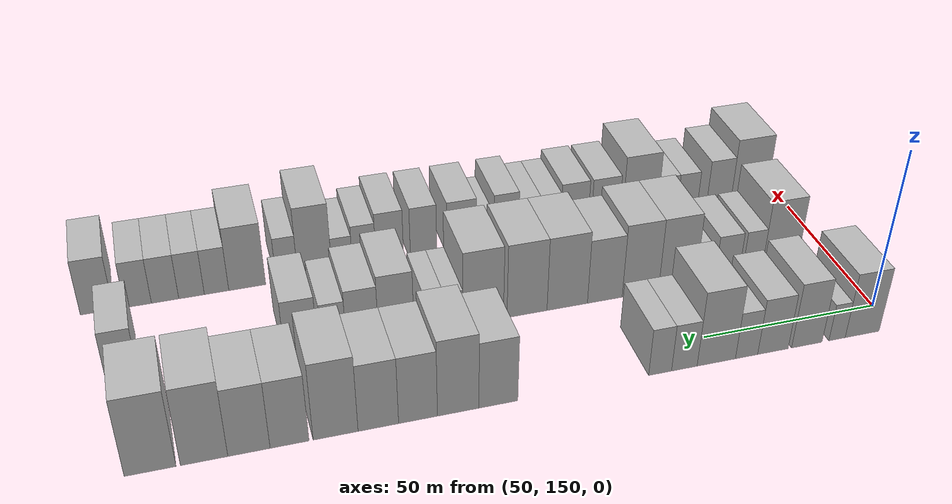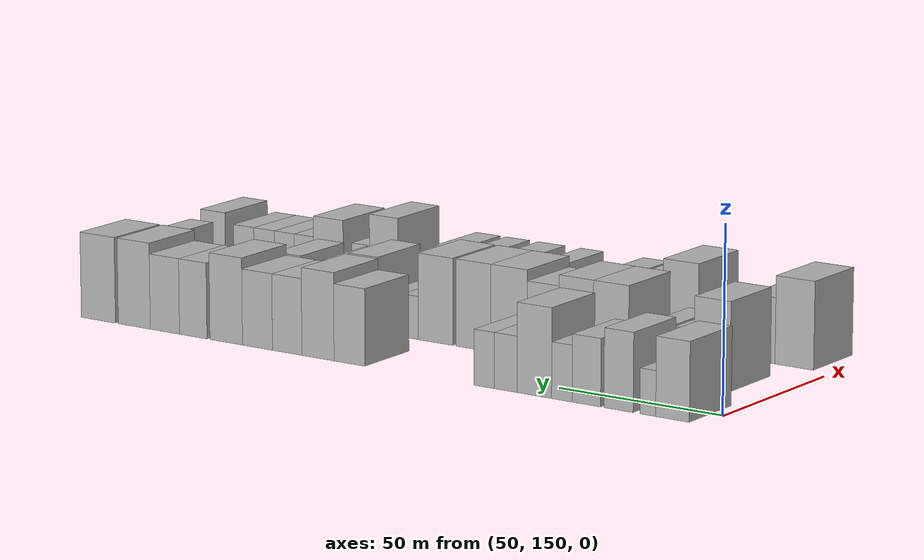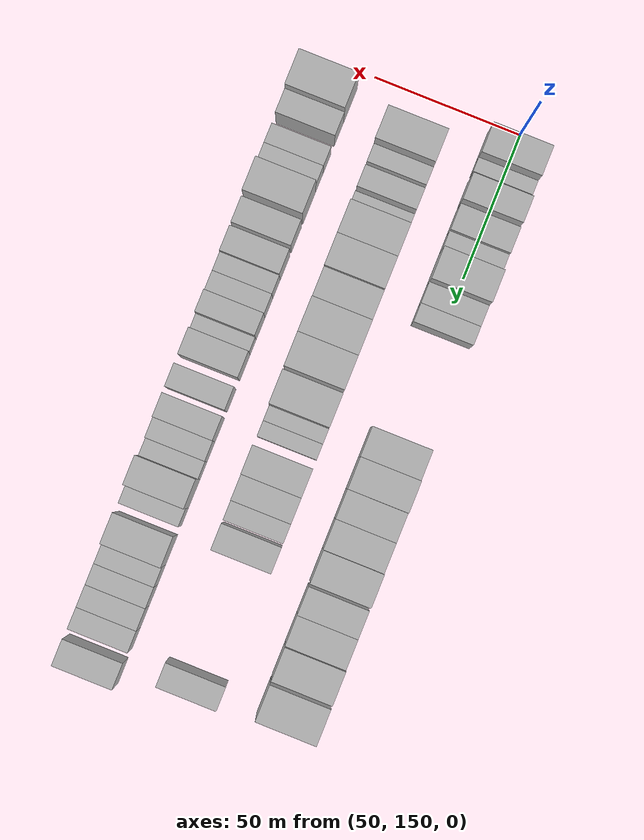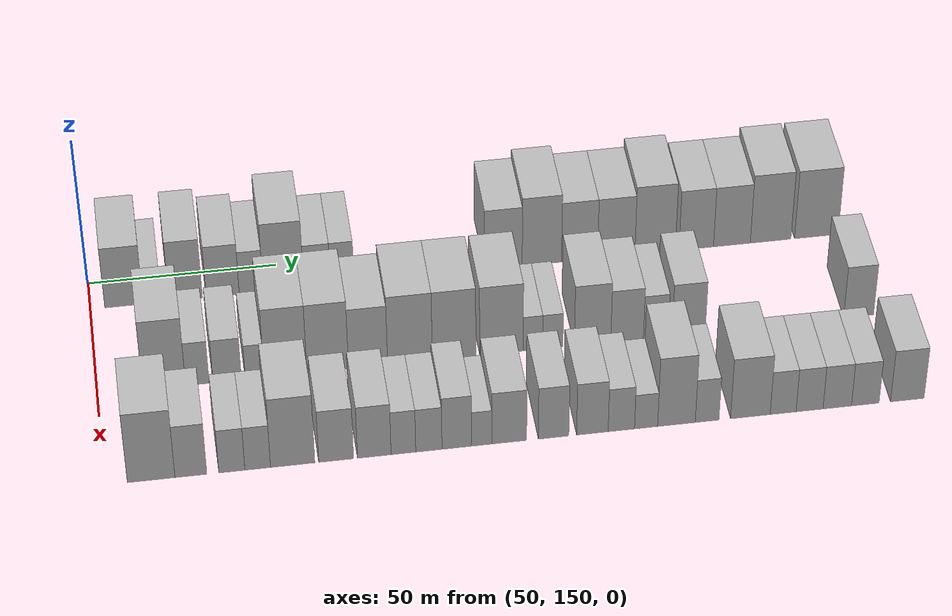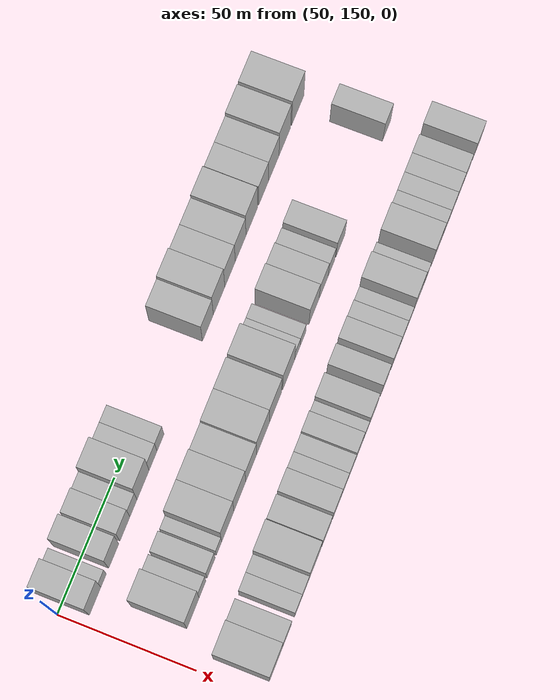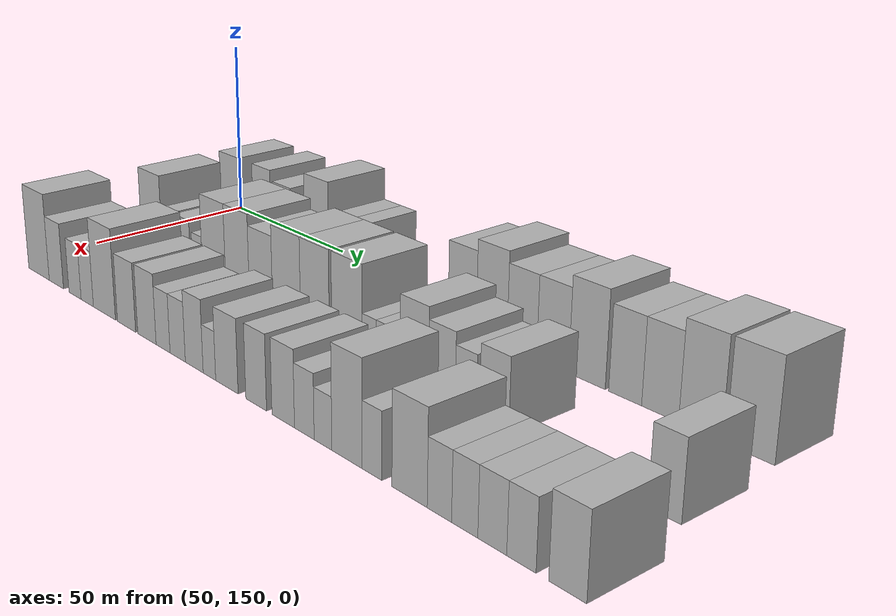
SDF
<sdf version="1.6">
 <world name="default">
  <model name="building_59">
   <static>1</static>
   <pose>50.0000 158.9098 0 0.000000 0.000000 0.000000</pose>
   <link name="link">
    <pose>0 0 10.50 0 0 0</pose>
    <collision name="collision"><geometry><box><size>20.0000 10.0654 21.0000</size></box></geometry></collision>
    <visual name="visual">
     <cast_shadows>0</cast_shadows>
     <geometry><box><size>20.0000 10.0654 21.0000</size></box></geometry>
     <material>
      <script>
       <uri>model://HANNAS_wall/materials/scripts</uri>
       <uri>model://HANNAS_wall/materials/textures</uri>
       <name>vrc/HANNAS_wall</name>
      </script>
     </material>
    </visual>
   </link>
  </model>
  <model name="building_60">
   <static>1</static>
   <pose>50.0000 166.3435 0 0.000000 0.000000 0.000000</pose>
   <link name="link">
    <pose>0 0 6.00 0 0 0</pose>
    <collision name="collision"><geometry><box><size>20.0000 4.8020 12.0000</size></box></geometry></collision>
    <visual name="visual">
     <cast_shadows>0</cast_shadows>
     <geometry><box><size>20.0000 4.8020 12.0000</size></box></geometry>
     <material>
      <script>
       <uri>model://HANNAS_wall/materials/scripts</uri>
       <uri>model://HANNAS_wall/materials/textures</uri>
       <name>vrc/HANNAS_wall</name>
      </script>
     </material>
    </visual>
   </link>
  </model>
  <model name="building_61">
   <static>1</static>
   <pose>50.0000 175.1790 0 0.000000 0.000000 0.000000</pose>
   <link name="link">
    <pose>0 0 10.50 0 0 0</pose>
    <collision name="collision"><geometry><box><size>20.0000 8.8691 21.0000</size></box></geometry></collision>
    <visual name="visual">
     <cast_shadows>0</cast_shadows>
     <geometry><box><size>20.0000 8.8691 21.0000</size></box></geometry>
     <material>
      <script>
       <uri>model://HANNAS_wall/materials/scripts</uri>
       <uri>model://HANNAS_wall/materials/textures</uri>
       <name>vrc/HANNAS_wall</name>
      </script>
     </material>
    </visual>
   </link>
  </model>
  <model name="building_62">
   <static>1</static>
   <pose>50.0000 184.9909 0 0.000000 0.000000 0.000000</pose>
   <link name="link">
    <pose>0 0 9.00 0 0 0</pose>
    <collision name="collision"><geometry><box><size>20.0000 8.7547 18.0000</size></box></geometry></collision>
    <visual name="visual">
     <cast_shadows>0</cast_shadows>
     <geometry><box><size>20.0000 8.7547 18.0000</size></box></geometry>
     <material>
      <script>
       <uri>model://HANNAS_wall/materials/scripts</uri>
       <uri>model://HANNAS_wall/materials/textures</uri>
       <name>vrc/HANNAS_wall</name>
      </script>
     </material>
    </visual>
   </link>
  </model>
  <model name="building_63">
   <static>1</static>
   <pose>50.0000 192.5342 0 0.000000 0.000000 0.000000</pose>
   <link name="link">
    <pose>0 0 7.50 0 0 0</pose>
    <collision name="collision"><geometry><box><size>20.0000 6.3318 15.0000</size></box></geometry></collision>
    <visual name="visual">
     <cast_shadows>0</cast_shadows>
     <geometry><box><size>20.0000 6.3318 15.0000</size></box></geometry>
     <material>
      <script>
       <uri>model://HANNAS_wall/materials/scripts</uri>
       <uri>model://HANNAS_wall/materials/textures</uri>
       <name>vrc/HANNAS_wall</name>
      </script>
     </material>
    </visual>
   </link>
  </model>
  <model name="building_64">
   <static>1</static>
   <pose>50.0000 201.0897 0 0.000000 0.000000 0.000000</pose>
   <link name="link">
    <pose>0 0 12.00 0 0 0</pose>
    <collision name="collision"><geometry><box><size>20.0000 10.7792 24.0000</size></box></geometry></collision>
    <visual name="visual">
     <cast_shadows>0</cast_shadows>
     <geometry><box><size>20.0000 10.7792 24.0000</size></box></geometry>
     <material>
      <script>
       <uri>model://HANNAS_wall/materials/scripts</uri>
       <uri>model://HANNAS_wall/materials/textures</uri>
       <name>vrc/HANNAS_wall</name>
      </script>
     </material>
    </visual>
   </link>
  </model>
  <model name="building_65">
   <static>1</static>
   <pose>50.0000 210.0357 0 0.000000 0.000000 0.000000</pose>
   <link name="link">
    <pose>0 0 7.50 0 0 0</pose>
    <collision name="collision"><geometry><box><size>20.0000 7.1128 15.0000</size></box></geometry></collision>
    <visual name="visual">
     <cast_shadows>0</cast_shadows>
     <geometry><box><size>20.0000 7.1128 15.0000</size></box></geometry>
     <material>
      <script>
       <uri>model://HANNAS_wall/materials/scripts</uri>
       <uri>model://HANNAS_wall/materials/textures</uri>
       <name>vrc/HANNAS_wall</name>
      </script>
     </material>
    </visual>
   </link>
  </model>
  <model name="building_66">
   <static>1</static>
   <pose>50.0000 216.7397 0 0.000000 0.000000 0.000000</pose>
   <link name="link">
    <pose>0 0 7.50 0 0 0</pose>
    <collision name="collision"><geometry><box><size>20.0000 6.2953 15.0000</size></box></geometry></collision>
    <visual name="visual">
     <cast_shadows>0</cast_shadows>
     <geometry><box><size>20.0000 6.2953 15.0000</size></box></geometry>
     <material>
      <script>
       <uri>model://HANNAS_wall/materials/scripts</uri>
       <uri>model://HANNAS_wall/materials/textures</uri>
       <name>vrc/HANNAS_wall</name>
      </script>
     </material>
    </visual>
   </link>
  </model>
  <model name="building_67">
   <static>1</static>
   <pose>50.0000 260.0310 0 0.000000 0.000000 0.000000</pose>
   <link name="link">
    <pose>0 0 10.50 0 0 0</pose>
    <collision name="collision"><geometry><box><size>20.0000 10.0957 21.0000</size></box></geometry></collision>
    <visual name="visual">
     <cast_shadows>0</cast_shadows>
     <geometry><box><size>20.0000 10.0957 21.0000</size></box></geometry>
     <material>
      <script>
       <uri>model://HANNAS_wall/materials/scripts</uri>
       <uri>model://HANNAS_wall/materials/textures</uri>
       <name>vrc/HANNAS_wall</name>
      </script>
     </material>
    </visual>
   </link>
  </model>
  <model name="building_68">
   <static>1</static>
   <pose>50.0000 270.3916 0 0.000000 0.000000 0.000000</pose>
   <link name="link">
    <pose>0 0 12.00 0 0 0</pose>
    <collision name="collision"><geometry><box><size>20.0000 10.6254 24.0000</size></box></geometry></collision>
    <visual name="visual">
     <cast_shadows>0</cast_shadows>
     <geometry><box><size>20.0000 10.6254 24.0000</size></box></geometry>
     <material>
      <script>
       <uri>model://HANNAS_wall/materials/scripts</uri>
       <uri>model://HANNAS_wall/materials/textures</uri>
       <name>vrc/HANNAS_wall</name>
      </script>
     </material>
    </visual>
   </link>
  </model>
  <model name="building_69">
   <static>1</static>
   <pose>50.0000 280.6120 0 0.000000 0.000000 0.000000</pose>
   <link name="link">
    <pose>0 0 10.50 0 0 0</pose>
    <collision name="collision"><geometry><box><size>20.0000 9.8154 21.0000</size></box></geometry></collision>
    <visual name="visual">
     <cast_shadows>0</cast_shadows>
     <geometry><box><size>20.0000 9.8154 21.0000</size></box></geometry>
     <material>
      <script>
       <uri>model://HANNAS_wall/materials/scripts</uri>
       <uri>model://HANNAS_wall/materials/textures</uri>
       <name>vrc/HANNAS_wall</name>
      </script>
     </material>
    </visual>
   </link>
  </model>
  <model name="building_70">
   <static>1</static>
   <pose>50.0000 290.5713 0 0.000000 0.000000 0.000000</pose>
   <link name="link">
    <pose>0 0 10.50 0 0 0</pose>
    <collision name="collision"><geometry><box><size>20.0000 10.1032 21.0000</size></box></geometry></collision>
    <visual name="visual">
     <cast_shadows>0</cast_shadows>
     <geometry><box><size>20.0000 10.1032 21.0000</size></box></geometry>
     <material>
      <script>
       <uri>model://HANNAS_wall/materials/scripts</uri>
       <uri>model://HANNAS_wall/materials/textures</uri>
       <name>vrc/HANNAS_wall</name>
      </script>
     </material>
    </visual>
   </link>
  </model>
  <model name="building_71">
   <static>1</static>
   <pose>50.0000 301.1397 0 0.000000 0.000000 0.000000</pose>
   <link name="link">
    <pose>0 0 12.00 0 0 0</pose>
    <collision name="collision"><geometry><box><size>20.0000 11.0336 24.0000</size></box></geometry></collision>
    <visual name="visual">
     <cast_shadows>0</cast_shadows>
     <geometry><box><size>20.0000 11.0336 24.0000</size></box></geometry>
     <material>
      <script>
       <uri>model://HANNAS_wall/materials/scripts</uri>
       <uri>model://HANNAS_wall/materials/textures</uri>
       <name>vrc/HANNAS_wall</name>
      </script>
     </material>
    </visual>
   </link>
  </model>
  <model name="building_72">
   <static>1</static>
   <pose>50.0000 312.3624 0 0.000000 0.000000 0.000000</pose>
   <link name="link">
    <pose>0 0 10.50 0 0 0</pose>
    <collision name="collision"><geometry><box><size>20.0000 9.4117 21.0000</size></box></geometry></collision>
    <visual name="visual">
     <cast_shadows>0</cast_shadows>
     <geometry><box><size>20.0000 9.4117 21.0000</size></box></geometry>
     <material>
      <script>
       <uri>model://HANNAS_wall/materials/scripts</uri>
       <uri>model://HANNAS_wall/materials/textures</uri>
       <name>vrc/HANNAS_wall</name>
      </script>
     </material>
    </visual>
   </link>
  </model>
  <model name="building_73">
   <static>1</static>
   <pose>50.0000 322.1083 0 0.000000 0.000000 0.000000</pose>
   <link name="link">
    <pose>0 0 10.50 0 0 0</pose>
    <collision name="collision"><geometry><box><size>20.0000 10.0800 21.0000</size></box></geometry></collision>
    <visual name="visual">
     <cast_shadows>0</cast_shadows>
     <geometry><box><size>20.0000 10.0800 21.0000</size></box></geometry>
     <material>
      <script>
       <uri>model://HANNAS_wall/materials/scripts</uri>
       <uri>model://HANNAS_wall/materials/textures</uri>
       <name>vrc/HANNAS_wall</name>
      </script>
     </material>
    </visual>
   </link>
  </model>
  <model name="building_74">
   <static>1</static>
   <pose>50.0000 332.7266 0 0.000000 0.000000 0.000000</pose>
   <link name="link">
    <pose>0 0 12.00 0 0 0</pose>
    <collision name="collision"><geometry><box><size>20.0000 11.1566 24.0000</size></box></geometry></collision>
    <visual name="visual">
     <cast_shadows>0</cast_shadows>
     <geometry><box><size>20.0000 11.1566 24.0000</size></box></geometry>
     <material>
      <script>
       <uri>model://HANNAS_wall/materials/scripts</uri>
       <uri>model://HANNAS_wall/materials/textures</uri>
       <name>vrc/HANNAS_wall</name>
      </script>
     </material>
    </visual>
   </link>
  </model>
  <model name="building_75">
   <static>1</static>
   <pose>50.0000 345.2990 0 0.000000 0.000000 0.000000</pose>
   <link name="link">
    <pose>0 0 12.00 0 0 0</pose>
    <collision name="collision"><geometry><box><size>20.0000 11.9881 24.0000</size></box></geometry></collision>
    <visual name="visual">
     <cast_shadows>0</cast_shadows>
     <geometry><box><size>20.0000 11.9881 24.0000</size></box></geometry>
     <material>
      <script>
       <uri>model://HANNAS_wall/materials/scripts</uri>
       <uri>model://HANNAS_wall/materials/textures</uri>
       <name>vrc/HANNAS_wall</name>
      </script>
     </material>
    </visual>
   </link>
  </model>
  <model name="building_137">
   <static>1</static>
   <pose>82.0000 167.1859 0 0.000000 0.000000 0.000000</pose>
   <link name="link">
    <pose>0 0 12.00 0 0 0</pose>
    <collision name="collision"><geometry><box><size>20.0000 10.9982 24.0000</size></box></geometry></collision>
    <visual name="visual">
     <cast_shadows>0</cast_shadows>
     <geometry><box><size>20.0000 10.9982 24.0000</size></box></geometry>
     <material>
      <script>
       <uri>model://HANNAS_wall/materials/scripts</uri>
       <uri>model://HANNAS_wall/materials/textures</uri>
       <name>vrc/HANNAS_wall</name>
      </script>
     </material>
    </visual>
   </link>
  </model>
  <model name="building_138">
   <static>1</static>
   <pose>82.0000 175.7157 0 0.000000 0.000000 0.000000</pose>
   <link name="link">
    <pose>0 0 7.50 0 0 0</pose>
    <collision name="collision"><geometry><box><size>20.0000 6.0614 15.0000</size></box></geometry></collision>
    <visual name="visual">
     <cast_shadows>0</cast_shadows>
     <geometry><box><size>20.0000 6.0614 15.0000</size></box></geometry>
     <material>
      <script>
       <uri>model://HANNAS_wall/materials/scripts</uri>
       <uri>model://HANNAS_wall/materials/textures</uri>
       <name>vrc/HANNAS_wall</name>
      </script>
     </material>
    </visual>
   </link>
  </model>
  <model name="building_139">
   <static>1</static>
   <pose>82.0000 183.4173 0 0.000000 0.000000 0.000000</pose>
   <link name="link">
    <pose>0 0 7.50 0 0 0</pose>
    <collision name="collision"><geometry><box><size>20.0000 7.3418 15.0000</size></box></geometry></collision>
    <visual name="visual">
     <cast_shadows>0</cast_shadows>
     <geometry><box><size>20.0000 7.3418 15.0000</size></box></geometry>
     <material>
      <script>
       <uri>model://HANNAS_wall/materials/scripts</uri>
       <uri>model://HANNAS_wall/materials/textures</uri>
       <name>vrc/HANNAS_wall</name>
      </script>
     </material>
    </visual>
   </link>
  </model>
  <model name="building_140">
   <static>1</static>
   <pose>82.0000 190.5098 0 0.000000 0.000000 0.000000</pose>
   <link name="link">
    <pose>0 0 6.00 0 0 0</pose>
    <collision name="collision"><geometry><box><size>20.0000 4.8431 12.0000</size></box></geometry></collision>
    <visual name="visual">
     <cast_shadows>0</cast_shadows>
     <geometry><box><size>20.0000 4.8431 12.0000</size></box></geometry>
     <material>
      <script>
       <uri>model://HANNAS_wall/materials/scripts</uri>
       <uri>model://HANNAS_wall/materials/textures</uri>
       <name>vrc/HANNAS_wall</name>
      </script>
     </material>
    </visual>
   </link>
  </model>
  <model name="building_141">
   <static>1</static>
   <pose>82.0000 198.4770 0 0.000000 0.000000 0.000000</pose>
   <link name="link">
    <pose>0 0 12.00 0 0 0</pose>
    <collision name="collision"><geometry><box><size>20.0000 11.0915 24.0000</size></box></geometry></collision>
    <visual name="visual">
     <cast_shadows>0</cast_shadows>
     <geometry><box><size>20.0000 11.0915 24.0000</size></box></geometry>
     <material>
      <script>
       <uri>model://HANNAS_wall/materials/scripts</uri>
       <uri>model://HANNAS_wall/materials/textures</uri>
       <name>vrc/HANNAS_wall</name>
      </script>
     </material>
    </visual>
   </link>
  </model>
  <model name="building_142">
   <static>1</static>
   <pose>82.0000 209.4177 0 0.000000 0.000000 0.000000</pose>
   <link name="link">
    <pose>0 0 12.00 0 0 0</pose>
    <collision name="collision"><geometry><box><size>20.0000 10.7898 24.0000</size></box></geometry></collision>
    <visual name="visual">
     <cast_shadows>0</cast_shadows>
     <geometry><box><size>20.0000 10.7898 24.0000</size></box></geometry>
     <material>
      <script>
       <uri>model://HANNAS_wall/materials/scripts</uri>
       <uri>model://HANNAS_wall/materials/textures</uri>
       <name>vrc/HANNAS_wall</name>
      </script>
     </material>
    </visual>
   </link>
  </model>
  <model name="building_143">
   <static>1</static>
   <pose>82.0000 219.8972 0 0.000000 0.000000 0.000000</pose>
   <link name="link">
    <pose>0 0 10.50 0 0 0</pose>
    <collision name="collision"><geometry><box><size>20.0000 10.1693 21.0000</size></box></geometry></collision>
    <visual name="visual">
     <cast_shadows>0</cast_shadows>
     <geometry><box><size>20.0000 10.1693 21.0000</size></box></geometry>
     <material>
      <script>
       <uri>model://HANNAS_wall/materials/scripts</uri>
       <uri>model://HANNAS_wall/materials/textures</uri>
       <name>vrc/HANNAS_wall</name>
      </script>
     </material>
    </visual>
   </link>
  </model>
  <model name="building_144">
   <static>1</static>
   <pose>82.0000 230.8302 0 0.000000 0.000000 0.000000</pose>
   <link name="link">
    <pose>0 0 12.00 0 0 0</pose>
    <collision name="collision"><geometry><box><size>20.0000 11.6968 24.0000</size></box></geometry></collision>
    <visual name="visual">
     <cast_shadows>0</cast_shadows>
     <geometry><box><size>20.0000 11.6968 24.0000</size></box></geometry>
     <material>
      <script>
       <uri>model://HANNAS_wall/materials/scripts</uri>
       <uri>model://HANNAS_wall/materials/textures</uri>
       <name>vrc/HANNAS_wall</name>
      </script>
     </material>
    </visual>
   </link>
  </model>
  <model name="building_145">
   <static>1</static>
   <pose>82.0000 242.3805 0 0.000000 0.000000 0.000000</pose>
   <link name="link">
    <pose>0 0 12.00 0 0 0</pose>
    <collision name="collision"><geometry><box><size>20.0000 11.4036 24.0000</size></box></geometry></collision>
    <visual name="visual">
     <cast_shadows>0</cast_shadows>
     <geometry><box><size>20.0000 11.4036 24.0000</size></box></geometry>
     <material>
      <script>
       <uri>model://HANNAS_wall/materials/scripts</uri>
       <uri>model://HANNAS_wall/materials/textures</uri>
       <name>vrc/HANNAS_wall</name>
      </script>
     </material>
    </visual>
   </link>
  </model>
  <model name="building_146">
   <static>1</static>
   <pose>82.0000 254.7773 0 0.000000 0.000000 0.000000</pose>
   <link name="link">
    <pose>0 0 12.00 0 0 0</pose>
    <collision name="collision"><geometry><box><size>20.0000 11.3901 24.0000</size></box></geometry></collision>
    <visual name="visual">
     <cast_shadows>0</cast_shadows>
     <geometry><box><size>20.0000 11.3901 24.0000</size></box></geometry>
     <material>
      <script>
       <uri>model://HANNAS_wall/materials/scripts</uri>
       <uri>model://HANNAS_wall/materials/textures</uri>
       <name>vrc/HANNAS_wall</name>
      </script>
     </material>
    </visual>
   </link>
  </model>
  <model name="building_147">
   <static>1</static>
   <pose>82.0000 263.0407 0 0.000000 0.000000 0.000000</pose>
   <link name="link">
    <pose>0 0 6.00 0 0 0</pose>
    <collision name="collision"><geometry><box><size>20.0000 5.1366 12.0000</size></box></geometry></collision>
    <visual name="visual">
     <cast_shadows>0</cast_shadows>
     <geometry><box><size>20.0000 5.1366 12.0000</size></box></geometry>
     <material>
      <script>
       <uri>model://HANNAS_wall/materials/scripts</uri>
       <uri>model://HANNAS_wall/materials/textures</uri>
       <name>vrc/HANNAS_wall</name>
      </script>
     </material>
    </visual>
   </link>
  </model>
  <model name="building_148">
   <static>1</static>
   <pose>82.0000 268.2765 0 0.000000 0.000000 0.000000</pose>
   <link name="link">
    <pose>0 0 6.00 0 0 0</pose>
    <collision name="collision"><geometry><box><size>20.0000 5.3351 12.0000</size></box></geometry></collision>
    <visual name="visual">
     <cast_shadows>0</cast_shadows>
     <geometry><box><size>20.0000 5.3351 12.0000</size></box></geometry>
     <material>
      <script>
       <uri>model://HANNAS_wall/materials/scripts</uri>
       <uri>model://HANNAS_wall/materials/textures</uri>
       <name>vrc/HANNAS_wall</name>
      </script>
     </material>
    </visual>
   </link>
  </model>
  <model name="building_149">
   <static>1</static>
   <pose>82.0000 278.7651 0 0.000000 0.000000 0.000000</pose>
   <link name="link">
    <pose>0 0 10.50 0 0 0</pose>
    <collision name="collision"><geometry><box><size>20.0000 9.6419 21.0000</size></box></geometry></collision>
    <visual name="visual">
     <cast_shadows>0</cast_shadows>
     <geometry><box><size>20.0000 9.6419 21.0000</size></box></geometry>
     <material>
      <script>
       <uri>model://HANNAS_wall/materials/scripts</uri>
       <uri>model://HANNAS_wall/materials/textures</uri>
       <name>vrc/HANNAS_wall</name>
      </script>
     </material>
    </visual>
   </link>
  </model>
  <model name="building_150">
   <static>1</static>
   <pose>82.0000 287.9101 0 0.000000 0.000000 0.000000</pose>
   <link name="link">
    <pose>0 0 9.00 0 0 0</pose>
    <collision name="collision"><geometry><box><size>20.0000 8.6483 18.0000</size></box></geometry></collision>
    <visual name="visual">
     <cast_shadows>0</cast_shadows>
     <geometry><box><size>20.0000 8.6483 18.0000</size></box></geometry>
     <material>
      <script>
       <uri>model://HANNAS_wall/materials/scripts</uri>
       <uri>model://HANNAS_wall/materials/textures</uri>
       <name>vrc/HANNAS_wall</name>
      </script>
     </material>
    </visual>
   </link>
  </model>
  <model name="building_151">
   <static>1</static>
   <pose>82.0000 295.5325 0 0.000000 0.000000 0.000000</pose>
   <link name="link">
    <pose>0 0 7.50 0 0 0</pose>
    <collision name="collision"><geometry><box><size>20.0000 6.5965 15.0000</size></box></geometry></collision>
    <visual name="visual">
     <cast_shadows>0</cast_shadows>
     <geometry><box><size>20.0000 6.5965 15.0000</size></box></geometry>
     <material>
      <script>
       <uri>model://HANNAS_wall/materials/scripts</uri>
       <uri>model://HANNAS_wall/materials/textures</uri>
       <name>vrc/HANNAS_wall</name>
      </script>
     </material>
    </visual>
   </link>
  </model>
  <model name="building_152">
   <static>1</static>
   <pose>82.0000 304.2276 0 0.000000 0.000000 0.000000</pose>
   <link name="link">
    <pose>0 0 9.00 0 0 0</pose>
    <collision name="collision"><geometry><box><size>20.0000 8.7937 18.0000</size></box></geometry></collision>
    <visual name="visual">
     <cast_shadows>0</cast_shadows>
     <geometry><box><size>20.0000 8.7937 18.0000</size></box></geometry>
     <material>
      <script>
       <uri>model://HANNAS_wall/materials/scripts</uri>
       <uri>model://HANNAS_wall/materials/textures</uri>
       <name>vrc/HANNAS_wall</name>
      </script>
     </material>
    </visual>
   </link>
  </model>
  <model name="building_153">
   <static>1</static>
   <pose>82.0000 349.6391 0 0.000000 0.000000 0.000000</pose>
   <link name="link">
    <pose>0 0 9.00 0 0 0</pose>
    <collision name="collision"><geometry><box><size>20.0000 8.0098 18.0000</size></box></geometry></collision>
    <visual name="visual">
     <cast_shadows>0</cast_shadows>
     <geometry><box><size>20.0000 8.0098 18.0000</size></box></geometry>
     <material>
      <script>
       <uri>model://HANNAS_wall/materials/scripts</uri>
       <uri>model://HANNAS_wall/materials/textures</uri>
       <name>vrc/HANNAS_wall</name>
      </script>
     </material>
    </visual>
   </link>
  </model>
  <model name="building_208">
   <static>1</static>
   <pose>114.0000 161.6183 0 0.000000 0.000000 0.000000</pose>
   <link name="link">
    <pose>0 0 12.00 0 0 0</pose>
    <collision name="collision"><geometry><box><size>20.0000 11.8710 24.0000</size></box></geometry></collision>
    <visual name="visual">
     <cast_shadows>0</cast_shadows>
     <geometry><box><size>20.0000 11.8710 24.0000</size></box></geometry>
     <material>
      <script>
       <uri>model://HANNAS_wall/materials/scripts</uri>
       <uri>model://HANNAS_wall/materials/textures</uri>
       <name>vrc/HANNAS_wall</name>
      </script>
     </material>
    </visual>
   </link>
  </model>
  <model name="building_209">
   <static>1</static>
   <pose>114.0000 171.5466 0 0.000000 0.000000 0.000000</pose>
   <link name="link">
    <pose>0 0 9.00 0 0 0</pose>
    <collision name="collision"><geometry><box><size>20.0000 7.9855 18.0000</size></box></geometry></collision>
    <visual name="visual">
     <cast_shadows>0</cast_shadows>
     <geometry><box><size>20.0000 7.9855 18.0000</size></box></geometry>
     <material>
      <script>
       <uri>model://HANNAS_wall/materials/scripts</uri>
       <uri>model://HANNAS_wall/materials/textures</uri>
       <name>vrc/HANNAS_wall</name>
      </script>
     </material>
    </visual>
   </link>
  </model>
  <model name="building_210">
   <static>1</static>
   <pose>114.0000 181.8092 0 0.000000 0.000000 0.000000</pose>
   <link name="link">
    <pose>0 0 7.50 0 0 0</pose>
    <collision name="collision"><geometry><box><size>20.0000 6.5398 15.0000</size></box></geometry></collision>
    <visual name="visual">
     <cast_shadows>0</cast_shadows>
     <geometry><box><size>20.0000 6.5398 15.0000</size></box></geometry>
     <material>
      <script>
       <uri>model://HANNAS_wall/materials/scripts</uri>
       <uri>model://HANNAS_wall/materials/textures</uri>
       <name>vrc/HANNAS_wall</name>
      </script>
     </material>
    </visual>
   </link>
  </model>
  <model name="building_211">
   <static>1</static>
   <pose>114.0000 188.3021 0 0.000000 0.000000 0.000000</pose>
   <link name="link">
    <pose>0 0 7.50 0 0 0</pose>
    <collision name="collision"><geometry><box><size>20.0000 6.4460 15.0000</size></box></geometry></collision>
    <visual name="visual">
     <cast_shadows>0</cast_shadows>
     <geometry><box><size>20.0000 6.4460 15.0000</size></box></geometry>
     <material>
      <script>
       <uri>model://HANNAS_wall/materials/scripts</uri>
       <uri>model://HANNAS_wall/materials/textures</uri>
       <name>vrc/HANNAS_wall</name>
      </script>
     </material>
    </visual>
   </link>
  </model>
  <model name="building_212">
   <static>1</static>
   <pose>114.0000 197.1057 0 0.000000 0.000000 0.000000</pose>
   <link name="link">
    <pose>0 0 12.00 0 0 0</pose>
    <collision name="collision"><geometry><box><size>20.0000 11.1612 24.0000</size></box></geometry></collision>
    <visual name="visual">
     <cast_shadows>0</cast_shadows>
     <geometry><box><size>20.0000 11.1612 24.0000</size></box></geometry>
     <material>
      <script>
       <uri>model://HANNAS_wall/materials/scripts</uri>
       <uri>model://HANNAS_wall/materials/textures</uri>
       <name>vrc/HANNAS_wall</name>
      </script>
     </material>
    </visual>
   </link>
  </model>
  <model name="building_213">
   <static>1</static>
   <pose>114.0000 208.0787 0 0.000000 0.000000 0.000000</pose>
   <link name="link">
    <pose>0 0 9.00 0 0 0</pose>
    <collision name="collision"><geometry><box><size>20.0000 8.7847 18.0000</size></box></geometry></collision>
    <visual name="visual">
     <cast_shadows>0</cast_shadows>
     <geometry><box><size>20.0000 8.7847 18.0000</size></box></geometry>
     <material>
      <script>
       <uri>model://HANNAS_wall/materials/scripts</uri>
       <uri>model://HANNAS_wall/materials/textures</uri>
       <name>vrc/HANNAS_wall</name>
      </script>
     </material>
    </visual>
   </link>
  </model>
  <model name="building_214">
   <static>1</static>
   <pose>114.0000 217.7221 0 0.000000 0.000000 0.000000</pose>
   <link name="link">
    <pose>0 0 9.00 0 0 0</pose>
    <collision name="collision"><geometry><box><size>20.0000 8.5021 18.0000</size></box></geometry></collision>
    <visual name="visual">
     <cast_shadows>0</cast_shadows>
     <geometry><box><size>20.0000 8.5021 18.0000</size></box></geometry>
     <material>
      <script>
       <uri>model://HANNAS_wall/materials/scripts</uri>
       <uri>model://HANNAS_wall/materials/textures</uri>
       <name>vrc/HANNAS_wall</name>
      </script>
     </material>
    </visual>
   </link>
  </model>
  <model name="building_215">
   <static>1</static>
   <pose>114.0000 225.1070 0 0.000000 0.000000 0.000000</pose>
   <link name="link">
    <pose>0 0 7.50 0 0 0</pose>
    <collision name="collision"><geometry><box><size>20.0000 6.2676 15.0000</size></box></geometry></collision>
    <visual name="visual">
     <cast_shadows>0</cast_shadows>
     <geometry><box><size>20.0000 6.2676 15.0000</size></box></geometry>
     <material>
      <script>
       <uri>model://HANNAS_wall/materials/scripts</uri>
       <uri>model://HANNAS_wall/materials/textures</uri>
       <name>vrc/HANNAS_wall</name>
      </script>
     </material>
    </visual>
   </link>
  </model>
  <model name="building_216">
   <static>1</static>
   <pose>114.0000 231.5764 0 0.000000 0.000000 0.000000</pose>
   <link name="link">
    <pose>0 0 7.50 0 0 0</pose>
    <collision name="collision"><geometry><box><size>20.0000 6.6713 15.0000</size></box></geometry></collision>
    <visual name="visual">
     <cast_shadows>0</cast_shadows>
     <geometry><box><size>20.0000 6.6713 15.0000</size></box></geometry>
     <material>
      <script>
       <uri>model://HANNAS_wall/materials/scripts</uri>
       <uri>model://HANNAS_wall/materials/textures</uri>
       <name>vrc/HANNAS_wall</name>
      </script>
     </material>
    </visual>
   </link>
  </model>
  <model name="building_217">
   <static>1</static>
   <pose>114.0000 238.6825 0 0.000000 0.000000 0.000000</pose>
   <link name="link">
    <pose>0 0 9.00 0 0 0</pose>
    <collision name="collision"><geometry><box><size>20.0000 7.5409 18.0000</size></box></geometry></collision>
    <visual name="visual">
     <cast_shadows>0</cast_shadows>
     <geometry><box><size>20.0000 7.5409 18.0000</size></box></geometry>
     <material>
      <script>
       <uri>model://HANNAS_wall/materials/scripts</uri>
       <uri>model://HANNAS_wall/materials/textures</uri>
       <name>vrc/HANNAS_wall</name>
      </script>
     </material>
    </visual>
   </link>
  </model>
  <model name="building_218">
   <static>1</static>
   <pose>114.0000 245.0213 0 0.000000 0.000000 0.000000</pose>
   <link name="link">
    <pose>0 0 6.00 0 0 0</pose>
    <collision name="collision"><geometry><box><size>20.0000 5.1367 12.0000</size></box></geometry></collision>
    <visual name="visual">
     <cast_shadows>0</cast_shadows>
     <geometry><box><size>20.0000 5.1367 12.0000</size></box></geometry>
     <material>
      <script>
       <uri>model://HANNAS_wall/materials/scripts</uri>
       <uri>model://HANNAS_wall/materials/textures</uri>
       <name>vrc/HANNAS_wall</name>
      </script>
     </material>
    </visual>
   </link>
  </model>
  <model name="building_219">
   <static>1</static>
   <pose>114.0000 252.0419 0 0.000000 0.000000 0.000000</pose>
   <link name="link">
    <pose>0 0 9.00 0 0 0</pose>
    <collision name="collision"><geometry><box><size>20.0000 8.9045 18.0000</size></box></geometry></collision>
    <visual name="visual">
     <cast_shadows>0</cast_shadows>
     <geometry><box><size>20.0000 8.9045 18.0000</size></box></geometry>
     <material>
      <script>
       <uri>model://HANNAS_wall/materials/scripts</uri>
       <uri>model://HANNAS_wall/materials/textures</uri>
       <name>vrc/HANNAS_wall</name>
      </script>
     </material>
    </visual>
   </link>
  </model>
  <model name="building_220">
   <static>1</static>
   <pose>114.0000 263.3968 0 0.000000 0.000000 0.000000</pose>
   <link name="link">
    <pose>0 0 9.00 0 0 0</pose>
    <collision name="collision"><geometry><box><size>20.0000 7.8054 18.0000</size></box></geometry></collision>
    <visual name="visual">
     <cast_shadows>0</cast_shadows>
     <geometry><box><size>20.0000 7.8054 18.0000</size></box></geometry>
     <material>
      <script>
       <uri>model://HANNAS_wall/materials/scripts</uri>
       <uri>model://HANNAS_wall/materials/textures</uri>
       <name>vrc/HANNAS_wall</name>
      </script>
     </material>
    </visual>
   </link>
  </model>
  <model name="building_221">
   <static>1</static>
   <pose>114.0000 273.3458 0 0.000000 0.000000 0.000000</pose>
   <link name="link">
    <pose>0 0 9.00 0 0 0</pose>
    <collision name="collision"><geometry><box><size>20.0000 8.0926 18.0000</size></box></geometry></collision>
    <visual name="visual">
     <cast_shadows>0</cast_shadows>
     <geometry><box><size>20.0000 8.0926 18.0000</size></box></geometry>
     <material>
      <script>
       <uri>model://HANNAS_wall/materials/scripts</uri>
       <uri>model://HANNAS_wall/materials/textures</uri>
       <name>vrc/HANNAS_wall</name>
      </script>
     </material>
    </visual>
   </link>
  </model>
  <model name="building_222">
   <static>1</static>
   <pose>114.0000 280.7939 0 0.000000 0.000000 0.000000</pose>
   <link name="link">
    <pose>0 0 7.50 0 0 0</pose>
    <collision name="collision"><geometry><box><size>20.0000 6.8035 15.0000</size></box></geometry></collision>
    <visual name="visual">
     <cast_shadows>0</cast_shadows>
     <geometry><box><size>20.0000 6.8035 15.0000</size></box></geometry>
     <material>
      <script>
       <uri>model://HANNAS_wall/materials/scripts</uri>
       <uri>model://HANNAS_wall/materials/textures</uri>
       <name>vrc/HANNAS_wall</name>
      </script>
     </material>
    </visual>
   </link>
  </model>
  <model name="building_223">
   <static>1</static>
   <pose>114.0000 287.1618 0 0.000000 0.000000 0.000000</pose>
   <link name="link">
    <pose>0 0 6.00 0 0 0</pose>
    <collision name="collision"><geometry><box><size>20.0000 5.9323 12.0000</size></box></geometry></collision>
    <visual name="visual">
     <cast_shadows>0</cast_shadows>
     <geometry><box><size>20.0000 5.9323 12.0000</size></box></geometry>
     <material>
      <script>
       <uri>model://HANNAS_wall/materials/scripts</uri>
       <uri>model://HANNAS_wall/materials/textures</uri>
       <name>vrc/HANNAS_wall</name>
      </script>
     </material>
    </visual>
   </link>
  </model>
  <model name="building_224">
   <static>1</static>
   <pose>114.0000 294.9985 0 0.000000 0.000000 0.000000</pose>
   <link name="link">
    <pose>0 0 12.00 0 0 0</pose>
    <collision name="collision"><geometry><box><size>20.0000 9.7411 24.0000</size></box></geometry></collision>
    <visual name="visual">
     <cast_shadows>0</cast_shadows>
     <geometry><box><size>20.0000 9.7411 24.0000</size></box></geometry>
     <material>
      <script>
       <uri>model://HANNAS_wall/materials/scripts</uri>
       <uri>model://HANNAS_wall/materials/textures</uri>
       <name>vrc/HANNAS_wall</name>
      </script>
     </material>
    </visual>
   </link>
  </model>
  <model name="building_225">
   <static>1</static>
   <pose>114.0000 302.9327 0 0.000000 0.000000 0.000000</pose>
   <link name="link">
    <pose>0 0 7.50 0 0 0</pose>
    <collision name="collision"><geometry><box><size>20.0000 6.1272 15.0000</size></box></geometry></collision>
    <visual name="visual">
     <cast_shadows>0</cast_shadows>
     <geometry><box><size>20.0000 6.1272 15.0000</size></box></geometry>
     <material>
      <script>
       <uri>model://HANNAS_wall/materials/scripts</uri>
       <uri>model://HANNAS_wall/materials/textures</uri>
       <name>vrc/HANNAS_wall</name>
      </script>
     </material>
    </visual>
   </link>
  </model>
  <model name="building_226">
   <static>1</static>
   <pose>114.0000 314.1385 0 0.000000 0.000000 0.000000</pose>
   <link name="link">
    <pose>0 0 10.50 0 0 0</pose>
    <collision name="collision"><geometry><box><size>20.0000 10.2845 21.0000</size></box></geometry></collision>
    <visual name="visual">
     <cast_shadows>0</cast_shadows>
     <geometry><box><size>20.0000 10.2845 21.0000</size></box></geometry>
     <material>
      <script>
       <uri>model://HANNAS_wall/materials/scripts</uri>
       <uri>model://HANNAS_wall/materials/textures</uri>
       <name>vrc/HANNAS_wall</name>
      </script>
     </material>
    </visual>
   </link>
  </model>
  <model name="building_227">
   <static>1</static>
   <pose>114.0000 322.6551 0 0.000000 0.000000 0.000000</pose>
   <link name="link">
    <pose>0 0 7.50 0 0 0</pose>
    <collision name="collision"><geometry><box><size>20.0000 6.7487 15.0000</size></box></geometry></collision>
    <visual name="visual">
     <cast_shadows>0</cast_shadows>
     <geometry><box><size>20.0000 6.7487 15.0000</size></box></geometry>
     <material>
      <script>
       <uri>model://HANNAS_wall/materials/scripts</uri>
       <uri>model://HANNAS_wall/materials/textures</uri>
       <name>vrc/HANNAS_wall</name>
      </script>
     </material>
    </visual>
   </link>
  </model>
  <model name="building_228">
   <static>1</static>
   <pose>114.0000 329.5333 0 0.000000 0.000000 0.000000</pose>
   <link name="link">
    <pose>0 0 7.50 0 0 0</pose>
    <collision name="collision"><geometry><box><size>20.0000 7.0077 15.0000</size></box></geometry></collision>
    <visual name="visual">
     <cast_shadows>0</cast_shadows>
     <geometry><box><size>20.0000 7.0077 15.0000</size></box></geometry>
     <material>
      <script>
       <uri>model://HANNAS_wall/materials/scripts</uri>
       <uri>model://HANNAS_wall/materials/textures</uri>
       <name>vrc/HANNAS_wall</name>
      </script>
     </material>
    </visual>
   </link>
  </model>
  <model name="building_229">
   <static>1</static>
   <pose>114.0000 336.7435 0 0.000000 0.000000 0.000000</pose>
   <link name="link">
    <pose>0 0 7.50 0 0 0</pose>
    <collision name="collision"><geometry><box><size>20.0000 7.4126 15.0000</size></box></geometry></collision>
    <visual name="visual">
     <cast_shadows>0</cast_shadows>
     <geometry><box><size>20.0000 7.4126 15.0000</size></box></geometry>
     <material>
      <script>
       <uri>model://HANNAS_wall/materials/scripts</uri>
       <uri>model://HANNAS_wall/materials/textures</uri>
       <name>vrc/HANNAS_wall</name>
      </script>
     </material>
    </visual>
   </link>
  </model>
  <model name="building_230">
   <static>1</static>
   <pose>114.0000 344.0556 0 0.000000 0.000000 0.000000</pose>
   <link name="link">
    <pose>0 0 7.50 0 0 0</pose>
    <collision name="collision"><geometry><box><size>20.0000 7.2117 15.0000</size></box></geometry></collision>
    <visual name="visual">
     <cast_shadows>0</cast_shadows>
     <geometry><box><size>20.0000 7.2117 15.0000</size></box></geometry>
     <material>
      <script>
       <uri>model://HANNAS_wall/materials/scripts</uri>
       <uri>model://HANNAS_wall/materials/textures</uri>
       <name>vrc/HANNAS_wall</name>
      </script>
     </material>
    </visual>
   </link>
  </model>
  <model name="building_231">
   <static>1</static>
   <pose>114.0000 355.0531 0 0.000000 0.000000 0.000000</pose>
   <link name="link">
    <pose>0 0 9.00 0 0 0</pose>
    <collision name="collision"><geometry><box><size>20.0000 8.7833 18.0000</size></box></geometry></collision>
    <visual name="visual">
     <cast_shadows>0</cast_shadows>
     <geometry><box><size>20.0000 8.7833 18.0000</size></box></geometry>
     <material>
      <script>
       <uri>model://HANNAS_wall/materials/scripts</uri>
       <uri>model://HANNAS_wall/materials/textures</uri>
       <name>vrc/HANNAS_wall</name>
      </script>
     </material>
    </visual>
   </link>
  </model>
 </world>
</sdf>
